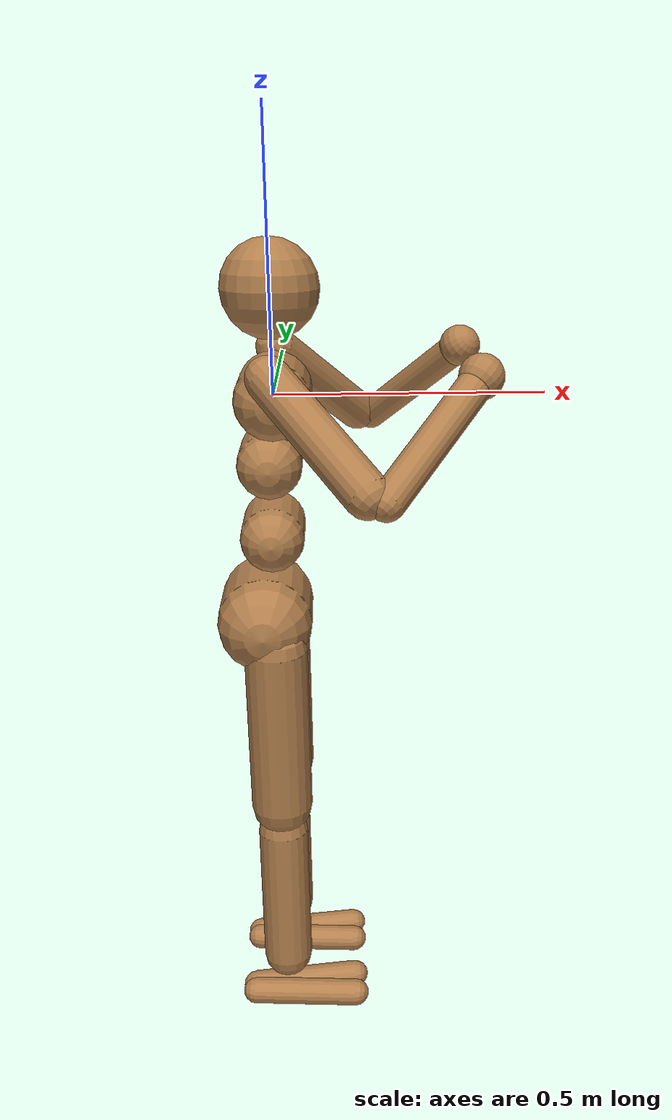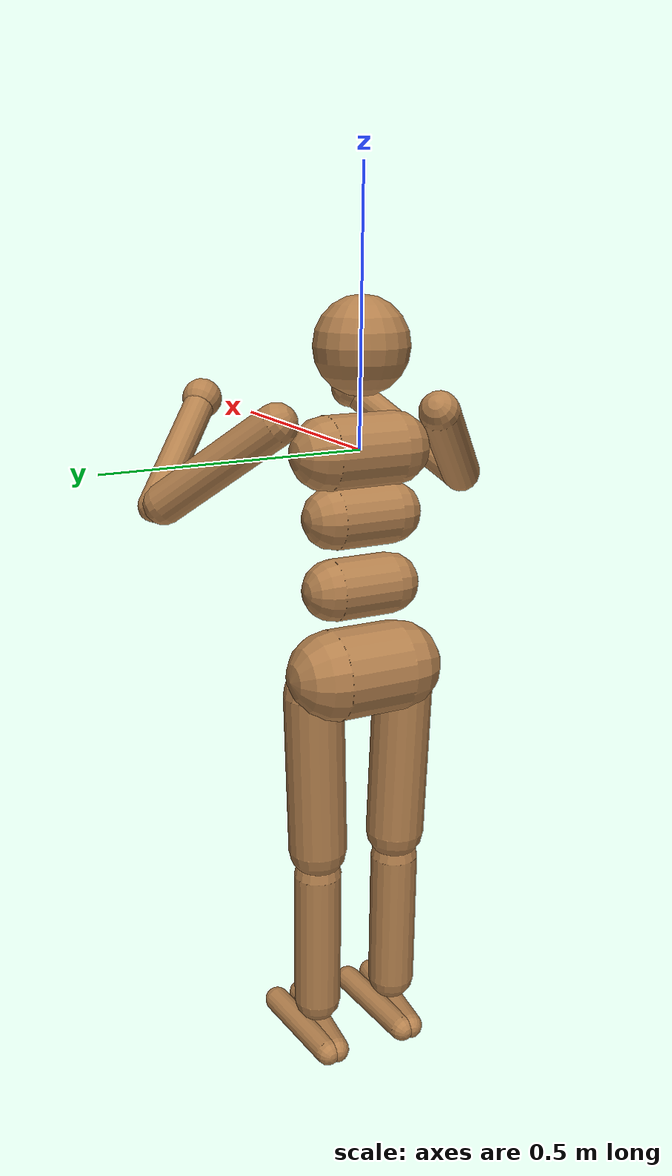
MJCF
<mujoco model="Humanoid">

  <statistic extent="2" center="0 0 1"/>

  <asset>
    <material name="self" rgba=".7 .5 .3 1"/>
  </asset>

  <default>
    <motor ctrlrange="-1 1" ctrllimited="true"/>
    <site size=".04" group="3"/>
    <default class="body">

      <!-- geoms -->
      <geom type="capsule" condim="1" friction=".7" solimp=".9 .99 .003" solref=".015 1" material="self"/>
      <default class="thigh">
        <geom size=".06"/>
      </default>
      <default class="shin">
        <geom fromto="0 0 0 0 0 -.3"  size=".049"/>
      </default>
      <default class="foot">
        <geom size=".027"/>
        <default class="foot1">
          <geom fromto="-.07 -.01 0 .14 -.03 0"/>
        </default>
        <default class="foot2">
          <geom fromto="-.07 .01 0 .14  .03 0"/>
        </default>
      </default>
      <default class="arm_upper">
        <geom size=".04"/>
      </default>
      <default class="arm_lower">
        <geom size=".031"/>
      </default>
      <default class="hand">
        <geom type="sphere" size=".04"/>
      </default>

      <!-- joints -->
      <joint type="hinge" damping=".2" stiffness="1" armature=".01" limited="true" solimplimit="0 .99 .01"/>
      <default class="joint_big">
        <joint damping="5" stiffness="10"/>
        <default class="hip_x">
          <joint range="-0.523599 0.174533"/>
        </default>
        <default class="hip_z">
          <joint range="-1.047198 0.610865"/>
        </default>
        <default class="hip_y">
          <joint axis="0 1 0" range="-2.617994 0.349066"/>
        </default>
        <default class="joint_big_stiff">
          <joint stiffness="20"/>
        </default>
      </default>
      <default class="knee">
        <joint pos="0 0 .02" axis="0 -1 0" range="-2.792527 0.034907"/>
      </default>
      <default class="ankle">
        <joint range="-0.872665 0.872665"/>
        <default class="ankle_y">
          <joint pos="0 0 .08" axis="0 1 0" stiffness="6"/>
        </default>
        <default class="ankle_x">
          <joint pos="0 0 .04" stiffness="3"/>
        </default>
      </default>
      <default class="shoulder">
        <joint range="-2.09439510239 1.047198"/>
      </default>
      <default class="elbow">
        <joint range="-1.745329 0.872665" stiffness="0"/>
      </default>

      <!-- sensor sites -->
      <default class="force-torque">
        <site type="box" size=".01 .01 .02" rgba="1 0 0 1" group="4"/>
      </default>
      <default class="touch">
        <site type="capsule" rgba="0 0 1 .3" group="5"/>
      </default>

      <!-- tracking site -->
      <default class="tracking_site">
        <site type="sphere" size="0.027" rgba="0 0 1 1" group="3"/>
      </default>
      <default class="mocap_site">
        <site type="sphere" size="0.027" rgba="1 0 0 1" group="2"/>
      </default>
    </default>
  </default>

  <worldbody>
    <body name="torso" childclass="body">
      <light name="top" pos="0 0 2" mode="trackcom"/>
      <camera name="back" pos="-3 0 1" xyaxes="0 -1 0 1 0 2" mode="trackcom"/>
      <camera name="side" pos="0 -3 1" xyaxes="1 0 0 0 1 2" mode="trackcom"/>
      <site name="root" class="force-torque"/>
      <geom name="torso" fromto="0 -.07 0 0 .07 0" size=".07"/>
      <geom name="waist_upper" fromto="-.01 -.06 -.12 -.01 .06 -.12" size=".06"/>
      <site name="torso" class="touch" type="box" pos="0 0 -.05" size=".075 .14 .13"/>
      <body name="head" pos="0 0 .19">
        <geom name="head" type="sphere" size=".09"/>
        <site name="tracking[head]" class="tracking_site" pos="0.09 0 0" />
        <site name="head" class="touch" type="sphere" size=".091"/>
        <camera name="egocentric" pos=".09 0 0" xyaxes="0 -1 0 .1 0 1" fovy="80"/>
      </body>
      <body name="waist_lower" pos="-.01 0 -.26">
        <geom name="waist_lower" fromto="0 -.06 0 0 .06 0" size=".06"/>
        <site name="waist_lower" class="touch" size=".061 .06" zaxis="0 1 0"/>
        <joint name="abdomen_z" pos="0 0 .065" axis="0 0 1" range="-0.785398 0.785398" class="joint_big_stiff"/>
        <joint name="abdomen_y" pos="0 0 .065" axis="0 1 0" range="-1.308997 0.523599" class="joint_big"/>
        <body name="pelvis" pos="0 0 -.165">
          <site name="tracking[pelvis]" class="tracking_site" pos="0 0 0.075" size=".05" />
          <joint name="abdomen_x" pos="0 0 .1" axis="1 0 0" range="-0.610865 0.610865" class="joint_big"/>
          <geom name="butt" fromto="-.02 -.07 0 -.02 .07 0" size=".09"/>
          <site name="butt" class="touch" size=".091 .07" pos="-.02 0 0" zaxis="0 1 0"/>
          <body name="thigh_right" pos="0 -.1 -.04">
            <site name="hip_right" class="force-torque"/>
            <site name="tracking[rhip]" class="tracking_site" pos="0 0.025 0.025" />
            <joint name="hip_x_right" axis="1 0 0" class="hip_x"/>
            <joint name="hip_z_right" axis="0 0 1" class="hip_z"/>
            <joint name="hip_y_right" class="hip_y"/>
            <geom name="thigh_right" fromto="0 0 0 0 .01 -.34" class="thigh"/>
            <site name="thigh_right" class="touch" pos="0 .005 -.17" size=".061 .17" zaxis="0 -1 34"/>
            <body name="shin_right" pos="0 .01 -.4">
              <site name="knee_right" class="force-torque" pos="0 0 .02"/>
              <joint name="knee_right" class="knee"/>
              <site name="tracking[rknee]" class="tracking_site" pos="0 0 0.05" />
              <geom name="shin_right" class="shin"/>
              <site name="shin_right" class="touch" pos="0 0 -.15" size=".05 .15"/>
              <body name="foot_right" pos="0 0 -.39">
                <site name="ankle_right" class="force-torque"/>
                <joint name="ankle_y_right" class="ankle_y"/>
                <joint name="ankle_x_right" class="ankle_x" axis="1 0 .5"/>
                <geom name="foot1_right" class="foot1"/>
                <geom name="foot2_right" class="foot2"/>
                <site name="foot_right" pos=".05 .03 0" type="sphere" size=".027"/>
                <site name="foot_right_right" class="touch" pos=".035 -.02 0" size=".03 .11" zaxis="21 -2 0"/>
                <site name="foot_right_left" class="touch" pos=".035 .02 0" size=".03 .11" zaxis="21 2 0"/>
                <body name="heel_right" pos="-0.05 0 0.04">
                  <site name="tracking[rheel]" class="tracking_site" />
                </body>
                <body name="toe_right" pos="0.07 0 -0.01">
                  <site name="tracking[rtoe]" class="tracking_site" />
                </body>
              </body>
            </body>
          </body>
          <body name="thigh_left" pos="0 .1 -.04">
            <site name="hip_left" class="force-torque"/>
            <site name="tracking[lhip]" class="tracking_site" pos="0 -0.025 0.025" />
            <joint name="hip_x_left" axis="-1 0 0" class="hip_x"/>
            <joint name="hip_z_left" axis="0 0 -1" class="hip_z"/>
            <joint name="hip_y_left" class="hip_y"/>
            <geom name="thigh_left" fromto="0 0 0 0 -.01 -.34" class="thigh"/>
            <site name="thigh_left" class="touch" pos="0 -.005 -.17" size=".061 .17" zaxis="0 1 34"/>
            <body name="shin_left" pos="0 -.01 -.4">
              <site name="knee_left" class="force-torque" pos="0 0 .02"/>
              <joint name="knee_left" class="knee"/>
              <site name="tracking[lknee]" class="tracking_site" pos="0 0 0.05" />
              <geom name="shin_left" fromto="0 0 0 0 0 -.3" class="shin"/>
              <site name="shin_left" class="touch"  pos="0 0 -.15" size=".05 .15"/>
              <body name="foot_left" pos="0 0 -.39">
                <site name="ankle_left" class="force-torque"/>
                <joint name="ankle_y_left" class="ankle_y"/>
                <joint name="ankle_x_left" class="ankle_x" axis="-1 0 -.5"/>
                <geom name="foot1_left" class="foot1"/>
                <geom name="foot2_left" class="foot2"/>
                <site name="foot_left" pos=".05 -.03 0" type="sphere" size=".027"/>
                <site name="foot_left_right" class="touch" pos=".035 -.02 0" size=".03 .11" zaxis="21 -2 0"/>
                <site name="foot_left_left" class="touch" pos=".035 .02 0" size=".03 .11" zaxis="21 2 0"/>
                <body name="heel_left" pos="-0.05 0 0.04">
                  <site name="tracking[lheel]" class="tracking_site" />
                </body>
                <body name="toe_left" pos="0.07 0 -0.01">
                  <site name="tracking[ltoe]" class="tracking_site" />
                </body>
              </body>
            </body>
          </body>
        </body>
      </body>
      <body name="upper_arm_right" pos="0 -.17 .06">
        <site name="shoulder_right" class="force-torque"/>
        <site name="tracking[rshoulder]" class="tracking_site" />
        <joint name="shoulder1_right" axis="2 1 1"  class="shoulder"/>
        <joint name="shoulder2_right" axis="0 -1 1" class="shoulder"/>
        <geom name="upper_arm_right" fromto="0 0 0 .16 -.16 -.16" class="arm_upper"/>
        <site name="upper_arm_right" class="touch" pos=".08 -.08 -.08" size=".041 .14" zaxis="1 -1 -1"/>
        <body name="lower_arm_right" pos=".18 -.18 -.18">
          <site name="elbow_right" class="force-torque"/>
          <joint name="elbow_right" axis="0 -1 1" class="elbow"/>
          <site name="tracking[relbow]" class="tracking_site" />
          <site name="tracking[rhand]" class="tracking_site" pos="0.13 0.13 0.13" />
          <geom name="lower_arm_right" fromto=".01 .01 .01 .17 .17 .17" class="arm_lower"/>
          <site name="lower_arm_right" class="touch" pos=".09 .09 .09" size=".032 .14" zaxis="1 1 1"/>
          <body name="hand_right" pos=".18 .18 .18">
            <geom name="hand_right" zaxis="1 1 1" class="hand"/>
            <site name="hand_right-force-torque" class="force-torque"/>
            <site name="hand_right" class="touch" type="sphere" size=".041"/>
          </body>
        </body>
      </body>
      <body name="upper_arm_left" pos="0 .17 .06">
        <site name="shoulder_left" class="force-torque"/>
        <site name="tracking[lshoulder]" class="tracking_site" />
        <joint name="shoulder1_left" axis="-2 1 -1" class="shoulder"/>
        <joint name="shoulder2_left" axis="0 -1 -1"  class="shoulder"/>
        <geom name="upper_arm_left" fromto="0 0 0 .16 .16 -.16" class="arm_upper"/>
        <site name="upper_arm_left" class="touch" pos=".08 .08 -.08" size=".041 .14" zaxis="1 1 -1"/>
        <body name="lower_arm_left" pos=".18 .18 -.18">
          <site name="elbow_left" class="force-torque"/>
          <joint name="elbow_left" axis="0 -1 -1" class="elbow"/>
          <site name="tracking[lelbow]" class="tracking_site" />
          <site name="tracking[lhand]" class="tracking_site" pos="0.13 -0.13 0.13" />
          <geom name="lower_arm_left" fromto=".01 -.01 .01 .17 -.17 .17" class="arm_lower"/>
          <site name="lower_arm_left" class="touch" pos=".09 -.09 .09" size=".032 .14" zaxis="1 -1 1"/>
          <body name="hand_left" pos=".18 -.18 .18">
            <geom name="hand_left" zaxis="1 -1 1" class="hand"/>
            <site name="hand_left-force-torque" class="force-torque"/>
            <site name="hand_left" class="touch" type="sphere" size=".041"/>
          </body>
        </body>
      </body>
    </body>
  </worldbody>

  <contact>
    <exclude body1="waist_lower" body2="thigh_right"/>
    <exclude body1="waist_lower" body2="thigh_left"/>
  </contact>

  <tendon>
    <fixed name="hamstring_right" limited="true" range="-0.3 2">
      <joint joint="hip_y_right" coef=".5"/>
      <joint joint="knee_right" coef="-.5"/>
    </fixed>
    <fixed name="hamstring_left" limited="true" range="-0.3 2">
      <joint joint="hip_y_left" coef=".5"/>
      <joint joint="knee_left" coef="-.5"/>
    </fixed>
  </tendon>

  <actuator>
    <motor name="abdomen_y"       gear="40"  joint="abdomen_y"/>
    <motor name="abdomen_z"       gear="40"  joint="abdomen_z"/>
    <motor name="abdomen_x"       gear="40"  joint="abdomen_x"/>
    <motor name="hip_x_right"     gear="40"  joint="hip_x_right"/>
    <motor name="hip_z_right"     gear="40"  joint="hip_z_right"/>
    <motor name="hip_y_right"     gear="120" joint="hip_y_right"/>
    <motor name="knee_right"      gear="100" joint="knee_right"/>
    <motor name="ankle_x_right"   gear="20"  joint="ankle_x_right"/>
    <motor name="ankle_y_right"   gear="20"  joint="ankle_y_right"/>
    <motor name="hip_x_left"      gear="40"  joint="hip_x_left"/>
    <motor name="hip_z_left"      gear="40"  joint="hip_z_left"/>
    <motor name="hip_y_left"      gear="120" joint="hip_y_left"/>
    <motor name="knee_left"       gear="100" joint="knee_left"/>
    <motor name="ankle_x_left"    gear="20"  joint="ankle_x_left"/>
    <motor name="ankle_y_left"    gear="20"  joint="ankle_y_left"/>
    <motor name="shoulder1_right" gear="20"  joint="shoulder1_right"/>
    <motor name="shoulder2_right" gear="20"  joint="shoulder2_right"/>
    <motor name="elbow_right"     gear="40"  joint="elbow_right"/>
    <motor name="shoulder1_left"  gear="20"  joint="shoulder1_left"/>
    <motor name="shoulder2_left"  gear="20"  joint="shoulder2_left"/>
    <motor name="elbow_left"      gear="40"  joint="elbow_left"/>
  </actuator>

  <sensor>
    <accelerometer name="root_accelerometer" site="root"/>
    <velocimeter name="root_velocimeter"     site="root"/>
    <gyro name="root_gyro"                   site="root"/>

    <force name="ankle_force_left"       site="ankle_left"/>
    <force name="ankle_force_right"      site="ankle_right"/>
    <force name="knee_force_left"        site="knee_left"/>
    <force name="knee_force_right"       site="knee_right"/>
    <force name="hip_force_left"         site="hip_left"/>
    <force name="hip_force_right"        site="hip_right"/>

    <force name="shoulder_force_left"    site="shoulder_left"/>
    <force name="shoulder_force_right"   site="shoulder_right"/>
    <force name="elbow_force_left"       site="elbow_left"/>
    <force name="elbow_force_right"      site="elbow_right"/>
    <force name="hand_force_left"        site="hand_left-force-torque"/>
    <force name="hand_force_right"       site="hand_right-force-torque"/>

    <torque name="ankle_torque_left"     site="ankle_left"/>
    <torque name="ankle_torque_right"    site="ankle_right"/>
    <torque name="knee_torque_left"      site="knee_left"/>
    <torque name="knee_torque_right"     site="knee_right"/>
    <torque name="hip_torque_left"       site="hip_left"/>
    <torque name="hip_torque_right"      site="hip_right"/>

    <torque name="shoulder_torque_left"  site="shoulder_left"/>
    <torque name="shoulder_torque_right" site="shoulder_right"/>
    <torque name="elbow_torque_left"     site="elbow_left"/>
    <torque name="elbow_torque_right"    site="elbow_right"/>
    <torque name="hand_torque_left"      site="hand_left-force-torque"/>
    <torque name="hand_torque_right"     site="hand_right-force-torque"/>

    <touch name="torso_touch"            site="torso"/>
    <touch name="head_touch"             site="head"/>
    <touch name="lower_waist_touch"      site="waist_lower"/>
    <touch name="butt_touch"             site="butt"/>
    <touch name="thigh_right_touch"      site="thigh_right"/>
    <touch name="shin_right_touch"       site="shin_right"/>
    <touch name="foot_right_right_touch" site="foot_right_right"/>
    <touch name="foot_right_right_left"  site="foot_right_left"/>
    <touch name="thigh_right_left"       site="thigh_left"/>
    <touch name="shin_right_left"        site="shin_left"/>
    <touch name="foot_left_right_touch"  site="foot_left_right"/>
    <touch name="foot_left_right_left"   site="foot_left_left"/>
    <touch name="upper_arm_right_touch"  site="upper_arm_right"/>
    <touch name="lower_arm_right_touch"  site="lower_arm_right"/>
    <touch name="hand_right_touch"       site="hand_right"/>
    <touch name="upper_arm_right_left"   site="upper_arm_left"/>
    <touch name="lower_arm_right_left"   site="lower_arm_left"/>
    <touch name="hand_right_left"        site="hand_left"/>
  </sensor>

</mujoco>
